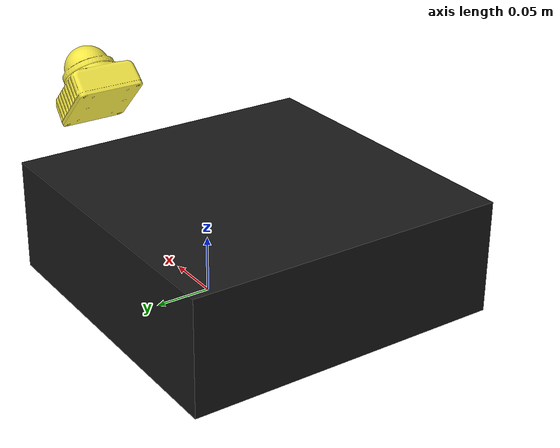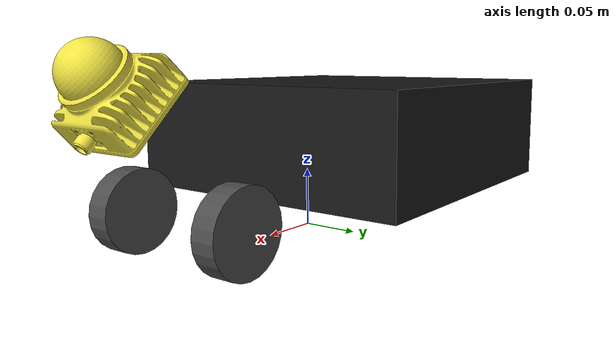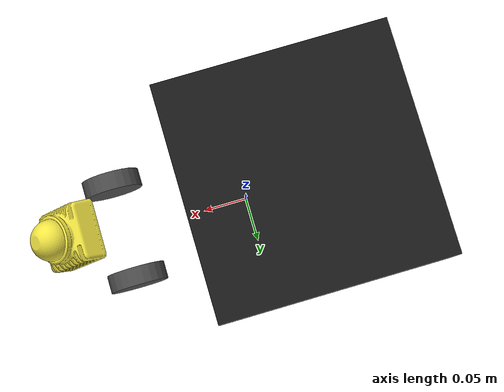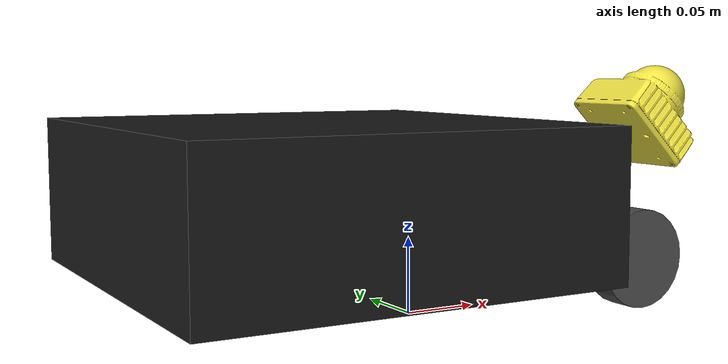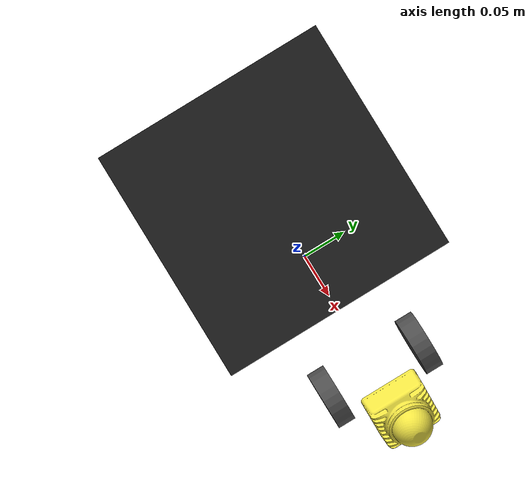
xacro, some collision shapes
<?xml version="1.0" ?>
<robot name="turtlebot3_waffle_pi" xmlns:xacro="http://ros.org/wiki/xacro">

  <!-- Import Mid360 LiDAR macro -->
  <xacro:include filename="$(find Mid360_imu_sim)/urdf/livox_mid360.xacro"/>

  <!-- Robot constants -->
  <xacro:property name="M_PI" value="3.1415926535897931"/>
  <xacro:property name="wheel_radius" value="0.033"/>
  <xacro:property name="wheel_separation" value="0.287"/>
  <xacro:property name="wheel_pos_z" value="0.0"/>

  <!-- Base link -->
  <link name="base_footprint"/>

  <joint name="base_joint" type="fixed">
    <origin xyz="0 0 ${wheel_radius}" rpy="0 0 0"/>
    <parent link="base_footprint"/>
    <child link="base_link"/>
  </joint>

  <link name="base_link">
    <visual>
      <origin xyz="-0.064 0 0.0" rpy="0 0 0"/>
      <geometry>
        <mesh filename="package://turtlebot3_description/meshes/bases/waffle_pi_base.stl" scale="0.001 0.001 0.001"/>
      </geometry>
      <material name="light_black"/>
    </visual>

    <collision>
      <origin xyz="-0.064 0 0.047" rpy="0 0 0"/>
      <geometry>
        <box size="0.266 0.266 0.094"/>
      </geometry>
    </collision>

    <inertial>
      <origin xyz="0 0 0" rpy="0 0 0"/>
      <mass value="1.3729096e+00"/>
      <inertia ixx="8.7002718e-03" ixy="-4.7576583e-05" ixz="1.1160499e-04"
               iyy="8.6195418e-03" iyz="-3.5422299e-06"
               izz="1.4612727e-02"/>
    </inertial>
  </link>

  <!-- IMU link - aligned with dog's trunk_imu -->
  <link name="imu_link"/>

  <joint name="imu_joint" type="fixed">
    <origin xyz="0 0 0" rpy="0 0 0"/>
    <parent link="base_link"/>
    <child link="imu_link"/>
  </joint>

  <gazebo reference="imu_link">
    <sensor type="imu" name="imu_sensor">
      <always_on>true</always_on>
      <update_rate>1000</update_rate>
      <visualize>true</visualize>
      <plugin name="gazebo_ros_imu" filename="libgazebo_ros_imu.so">
        <topicName>/trunk_imu</topicName>
        <bodyName>imu_link</bodyName>
        <updateRate>1000.0</updateRate>
        <gaussianNoise>0.001</gaussianNoise>
      </plugin>
    </sensor>
  </gazebo>

  <!-- Mid360 LiDAR - same pose as on the dog -->
  <!-- Pose: (0.2, 0.0, 0.08), RPY: (0.0, 0.785, 0.0) - tilted 45 degrees -->
  <xacro:Livox_Mid40 visualize="true" name="laser_livox"/>

  <joint name="laser_livox_joint" type="fixed">
    <origin xyz="0.2 0.0 0.08" rpy="0 0.785 0"/>
    <parent link="base_link"/>
    <child link="laser_livox_base"/>
  </joint>

  <!-- Wheels -->
  <xacro:macro name="wheel" params="prefix reflect_x reflect_y">
    <link name="${prefix}_wheel_link">
      <visual>
        <origin xyz="0 0 0" rpy="${M_PI/2} 0 0"/>
        <geometry>
          <cylinder radius="${wheel_radius}" length="0.02"/>
        </geometry>
        <material name="dark_grey"/>
      </visual>

      <collision>
        <origin xyz="0 0 0" rpy="${M_PI/2} 0 0"/>
        <geometry>
          <cylinder radius="${wheel_radius}" length="0.02"/>
        </geometry>
      </collision>

      <inertial>
        <origin xyz="0 0 0" rpy="0 0 0"/>
        <mass value="0.01"/>
        <inertia ixx="0.0001" ixy="0" ixz="0"
                 iyy="0.0001" iyz="0"
                 izz="0.0001"/>
      </inertial>
    </link>

    <joint name="${prefix}_wheel_joint" type="continuous">
      <origin xyz="${reflect_x * wheel_separation/2} ${reflect_y * 0.055} ${wheel_pos_z}" rpy="0 0 0"/>
      <parent link="base_link"/>
      <child link="${prefix}_wheel_link"/>
      <axis xyz="0 1 0"/>
      <limit effort="10" velocity="10"/>
      <dynamics damping="0.1" friction="0.1"/>
    </joint>
  </xacro:macro>

  <xacro:wheel prefix="left" reflect_x="1" reflect_y="1"/>
  <xacro:wheel prefix="right" reflect_x="1" reflect_y="-1"/>

  <!-- Caster wheel for stability -->
  <link name="caster_back_link">
    <inertial>
      <origin xyz="0 0 0" rpy="0 0 0"/>
      <mass value="0.001"/>
      <inertia ixx="0.000001" ixy="0" ixz="0"
               iyy="0.000001" iyz="0"
               izz="0.000001"/>
    </inertial>
    <visual>
      <origin xyz="0 0 0" rpy="0 0 0"/>
      <geometry>
        <sphere radius="0.015"/>
      </geometry>
      <material name="black"/>
    </visual>
    <collision>
      <origin xyz="0 0 0" rpy="0 0 0"/>
      <geometry>
        <sphere radius="0.015"/>
      </geometry>
    </collision>
  </link>

  <joint name="caster_back_joint" type="fixed">
    <origin xyz="-0.12 0 -0.015" rpy="0 0 0"/>
    <parent link="base_link"/>
    <child link="caster_back_link"/>
  </joint>

  <!-- Gazebo plugin for differential drive -->
  <gazebo>
    <plugin name="differential_drive_controller" filename="libgazebo_ros_diff_drive.so">
      <alwaysOn>true</alwaysOn>
      <updateRate>100</updateRate>
      <leftJoint>left_wheel_joint</leftJoint>
      <rightJoint>right_wheel_joint</rightJoint>
      <wheelSeparation>${wheel_separation}</wheelSeparation>
      <wheelDiameter>${2*wheel_radius}</wheelDiameter>
      <torque>20</torque>
      <wheelAcceleration>1.0</wheelAcceleration>
      <commandTopic>cmd_vel</commandTopic>
      <odometryTopic>odom</odometryTopic>
      <odometryFrame>odom</odometryFrame>
      <robotBaseFrame>base_footprint</robotBaseFrame>
      <publishOdomTF>true</publishOdomTF>
      <publishWheelTF>false</publishWheelTF>
      <publishTf>true</publishTf>
    </plugin>
  </gazebo>

  <!-- Materials -->
  <material name="light_black">
    <color rgba="0.1 0.1 0.1 1.0"/>
  </material>
  <material name="dark_grey">
    <color rgba="0.3 0.3 0.3 1.0"/>
  </material>
  <material name="black">
    <color rgba="0.0 0.0 0.0 1.0"/>
  </material>

</robot>

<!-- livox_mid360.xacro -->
<robot xmlns:xacro="http://ros.org/wiki/xacro">

  <xacro:property name="M_PI" value="3.14159"/>
  <xacro:property name="laser_min_range" value="0.1"/>
  <xacro:property name="laser_max_range" value="200.0"/>
  <xacro:property name="ros_topic" value="scan"/>
  <xacro:property name="samples" value="48000"/>
  <xacro:property name="downsample" value="1"/>

  <xacro:macro name="null_inertial">
    <inertial>
      <mass value="0.1"/>
    <inertia ixx="0.01" ixy="0" ixz="0"
          iyy="0.01" iyz="0"
          izz="0.01"/>
    </inertial>
  </xacro:macro>
  <xacro:macro name="Livox_Mid_gazebo_sensor" params="visualize:=True update_rate:=10 resolution:=0.002 noise_mean:=0.0 noise_stddev:=0.01 name:=livox">
    <gazebo reference="${name}">
      <sensor type="ray" name="laser_${name}">
        <pose>0 0 0 0 0 0</pose>
        <visualize>${visualize}</visualize>
        <update_rate>${update_rate}</update_rate>
        <!-- This ray plgin is only for visualization. -->
        <plugin name="gazebo_ros_laser_controller" filename="liblivox_laser_simulation.so">
			 <ray>
			  <scan>
				  <horizontal>
				    <samples>100</samples>
				    <resolution>1</resolution>
				    <min_angle>0</min_angle>
            			    <max_angle>${2*M_PI}</max_angle>
				  </horizontal>
				  <vertical>
				    <samples>360</samples>
				    <resolution>1</resolution>
				    <min_angle>${-3.22/180*M_PI}</min_angle>
           			    <max_angle>${56.22/180*M_PI}</max_angle>
				  </vertical>
			  </scan>
			  <range>
				  <min>0.1</min>
				  <max>30</max>
				  <resolution>0.02</resolution>
			  </range>
			  <noise>
				  <type>gaussian</type>
				  <mean>0.0</mean>
				  <stddev>0.0</stddev>
			  </noise>
			  </ray>
          <visualize>${visualize}</visualize>
		  <samples>${samples}</samples>
		  <downsample>${downsample}</downsample>
		  <csv_file_name>package://livox_laser_simulation/scan_mode/mid360.csv</csv_file_name>
		  <ros_topic>${ros_topic}</ros_topic>
        </plugin>
      </sensor>
    </gazebo>
  </xacro:macro>

  <xacro:macro name="Livox_Mid40" params="visualize:=True name:=livox">
    <link name="${name}_base">
      <xacro:null_inertial/>
      <visual>
        <origin xyz="0.00 0 0.0" rpy="0 0 0"/>
        <geometry>
          <mesh filename="package://livox_laser_simulation/meshes/mid360.dae">
          </mesh>
        </geometry>
      </visual>

      <collision>
		  <origin xyz="0 0 0" rpy="0 0 0" /> <geometry> <mesh
		  filename="package://livox_laser_simulation/meshes/mid360_rules.dae">
		  </mesh> </geometry>
      </collision>
    </link>
    <link name="${name}">
      <xacro:null_inertial/>
    </link>

    <joint name="${name}_to_${name}_base_joint" type="fixed">
      <parent link="${name}_base"/>
      <child link="${name}"/>
      <origin rpy="0 0 0" xyz="-0.012 0.0 0.047"/>
    </joint>
    <xacro:Livox_Mid_gazebo_sensor name="${name}" visualize="${visualize}"/>
  </xacro:macro>
    <!--xacro:Livox_Mid40 name="livox"/-->
</robot>
